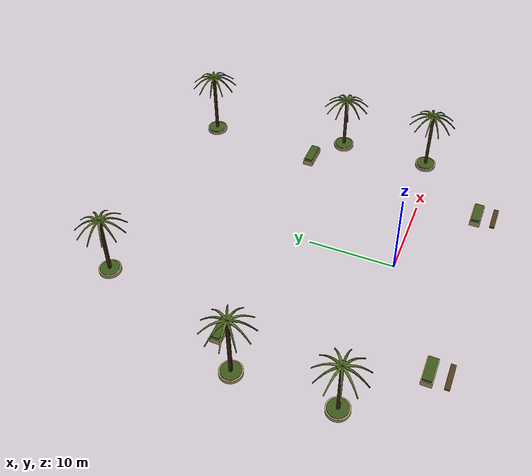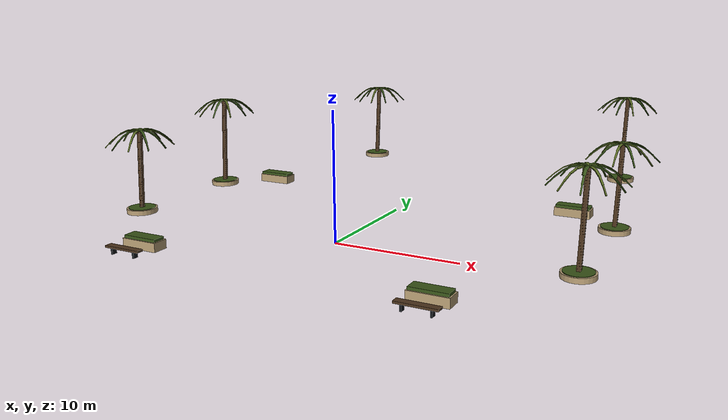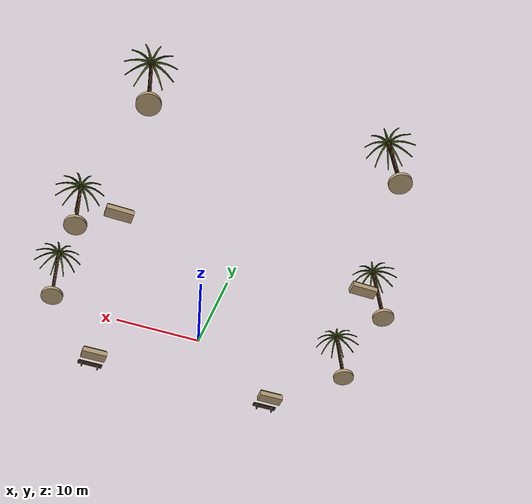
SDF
<?xml version='1.0' encoding='utf-8'?>
<sdf version="1.10">
  <model name="landscaping">
    <static>true</static>
    <link name="body">
      <visual name="dark">
        <geometry>
          <mesh>
            <uri>model://landscaping/meshes/dark.obj</uri>
          </mesh>
        </geometry>
        <material>
          <ambient>0.055 0.065 0.08 1</ambient>
          <diffuse>0.055 0.065 0.08 1</diffuse>
          <specular>.08 .08 .08 1</specular>
        </material>
      </visual>
      <visual name="green">
        <geometry>
          <mesh>
            <uri>model://landscaping/meshes/green.obj</uri>
          </mesh>
        </geometry>
        <material>
          <ambient>0.23 0.34 0.1 1</ambient>
          <diffuse>0.23 0.34 0.1 1</diffuse>
          <specular>.08 .08 .08 1</specular>
        </material>
      </visual>
      <visual name="leaf">
        <geometry>
          <mesh>
            <uri>model://landscaping/meshes/leaf.obj</uri>
          </mesh>
        </geometry>
        <material>
          <ambient>0.36 0.43 0.14 1</ambient>
          <diffuse>0.36 0.43 0.14 1</diffuse>
          <specular>.08 .08 .08 1</specular>
        </material>
      </visual>
      <visual name="stone">
        <geometry>
          <mesh>
            <uri>model://landscaping/meshes/stone.obj</uri>
          </mesh>
        </geometry>
        <material>
          <ambient>0.72 0.62 0.46 1</ambient>
          <diffuse>0.72 0.62 0.46 1</diffuse>
          <specular>.08 .08 .08 1</specular>
        </material>
      </visual>
      <visual name="trunk">
        <geometry>
          <mesh>
            <uri>model://landscaping/meshes/trunk.obj</uri>
          </mesh>
        </geometry>
        <material>
          <ambient>0.31 0.21 0.12 1</ambient>
          <diffuse>0.31 0.21 0.12 1</diffuse>
          <specular>.08 .08 .08 1</specular>
        </material>
      </visual>
    </link>
  </model>
</sdf>
